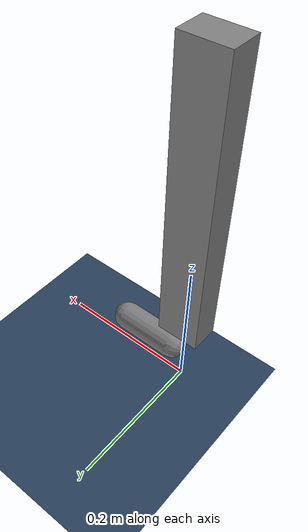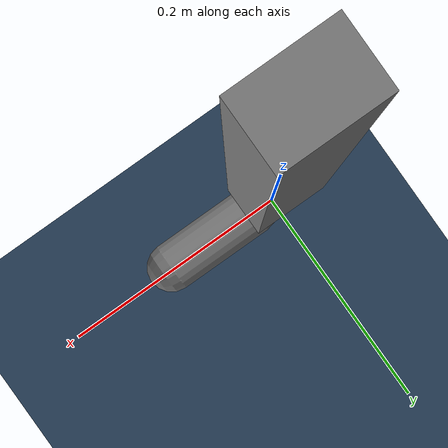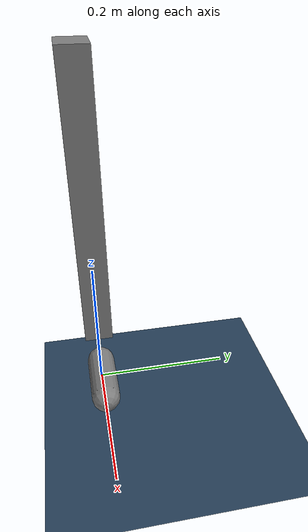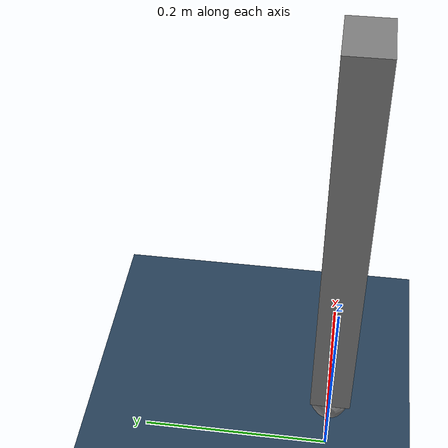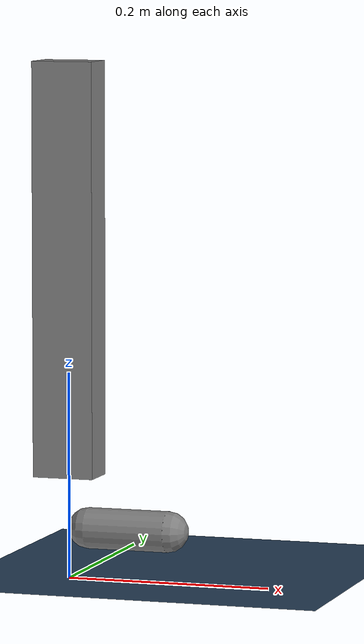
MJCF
<mujoco model="ice skate">
  <asset>
    <texture name="grid" type="2d" builtin="checker" rgb1=".1 .2 .3" rgb2=".2 .3 .4" width="512" height="512"/>
    <material name="grid" texture="grid" texrepeat="1 1" texuniform="true" reflectance=".2"/>
  </asset>

  <worldbody>
    <geom name="floor" pos="0 0 0" size="5 5 .05" type="plane" material="grid"/>
    <body name="leg" pos="0 0 .3">
      <joint type="slide" axis="1 0 0"/>
      <joint type="slide" axis="0 1 0"/>
      <joint type="slide" axis="0 0 1"/>
      <joint type="hinge" axis="0 0 1"/>
      <light pos="0 0 2"/>
      <geom name="shin" type="box" size=".03 .02 .2"/>
      <geom name="skate" type="capsule" fromto=".02 0 -.25 .1 0 -.25" size=".02"/>
    </body>
  </worldbody>

  <contact>
    <pair name="non-isotropic" geom1="floor" geom2="skate" condim="3" friction="0.1 1"/>
  </contact>
</mujoco>
